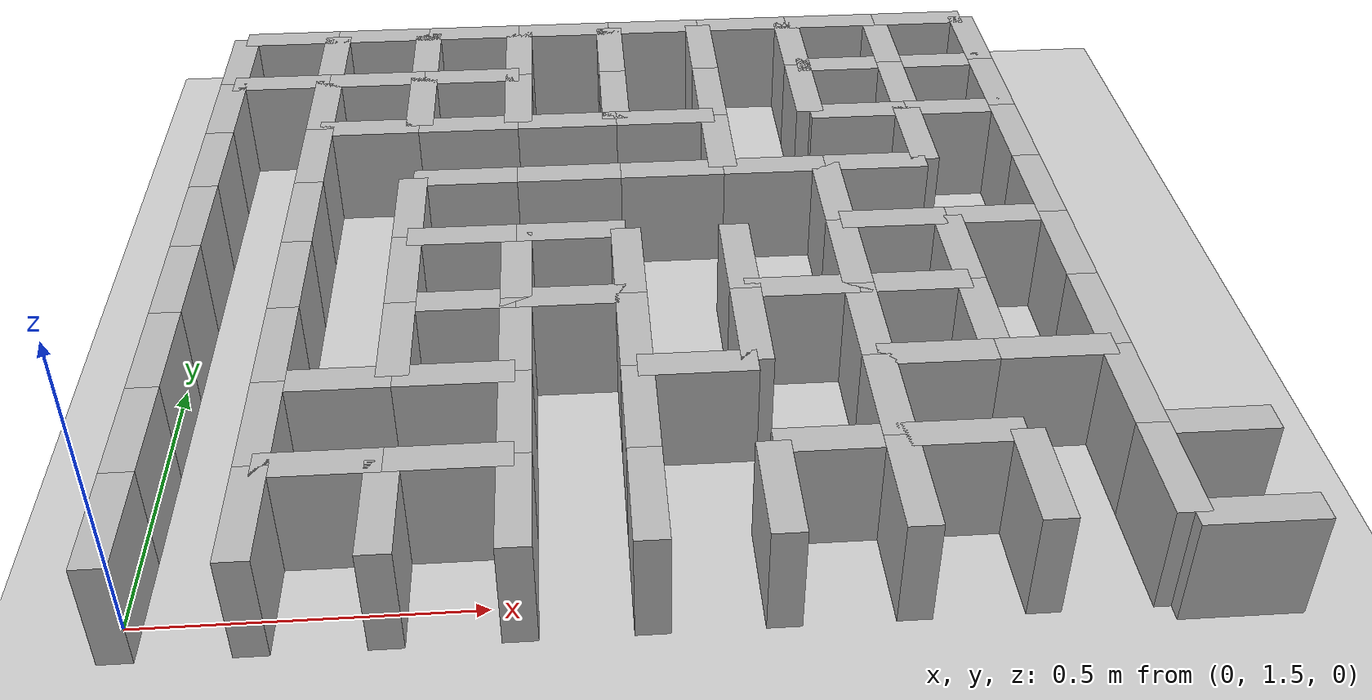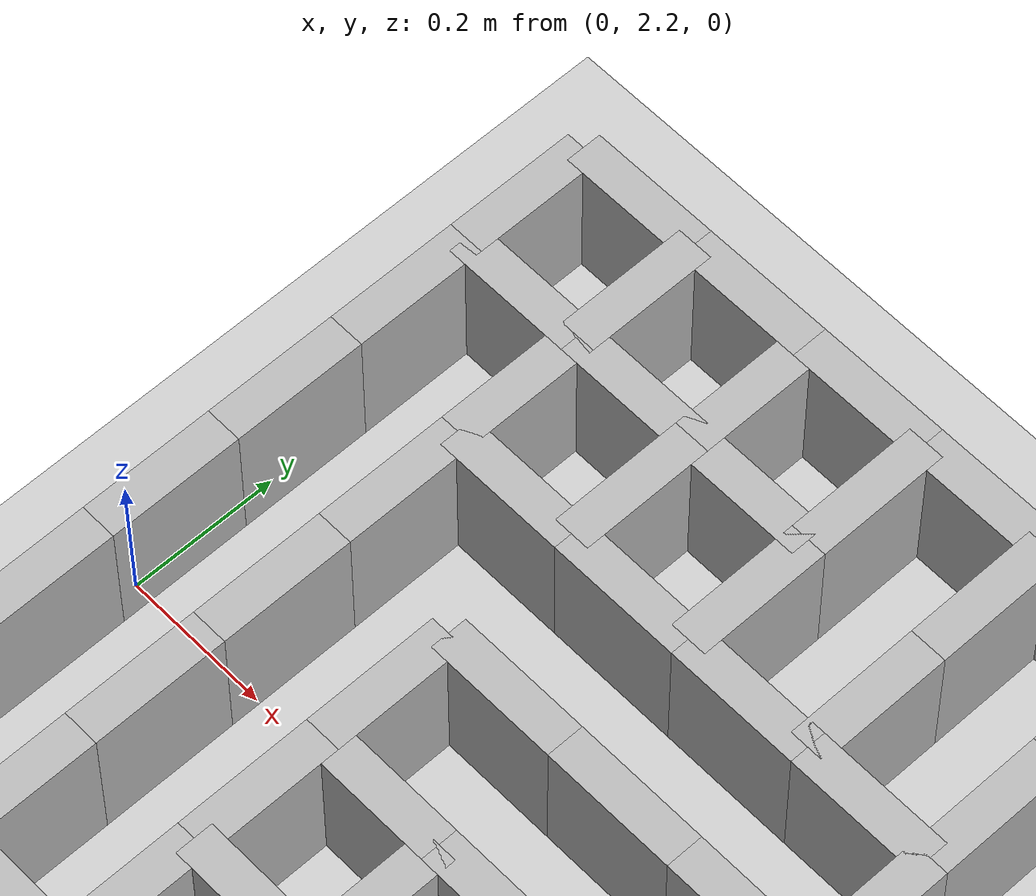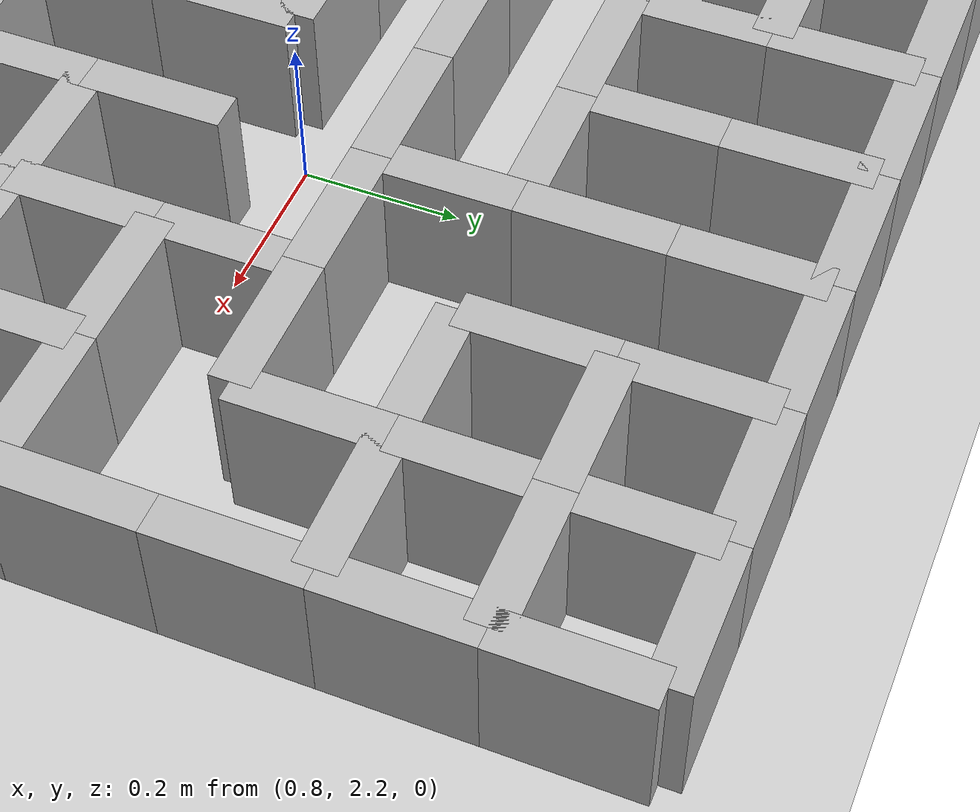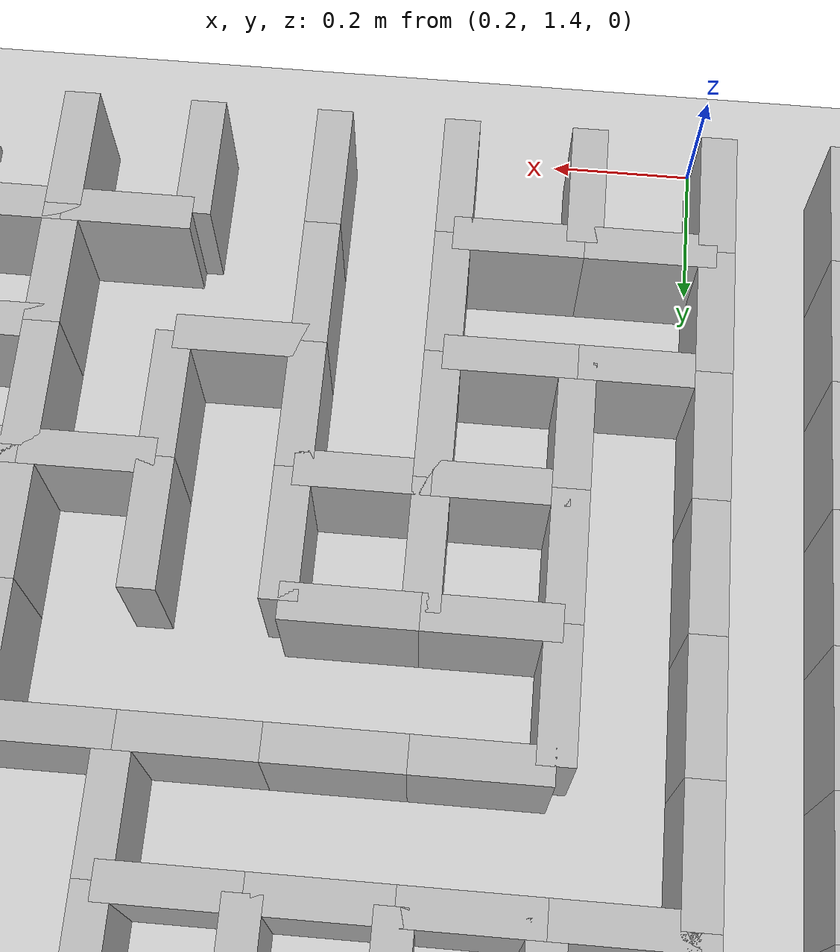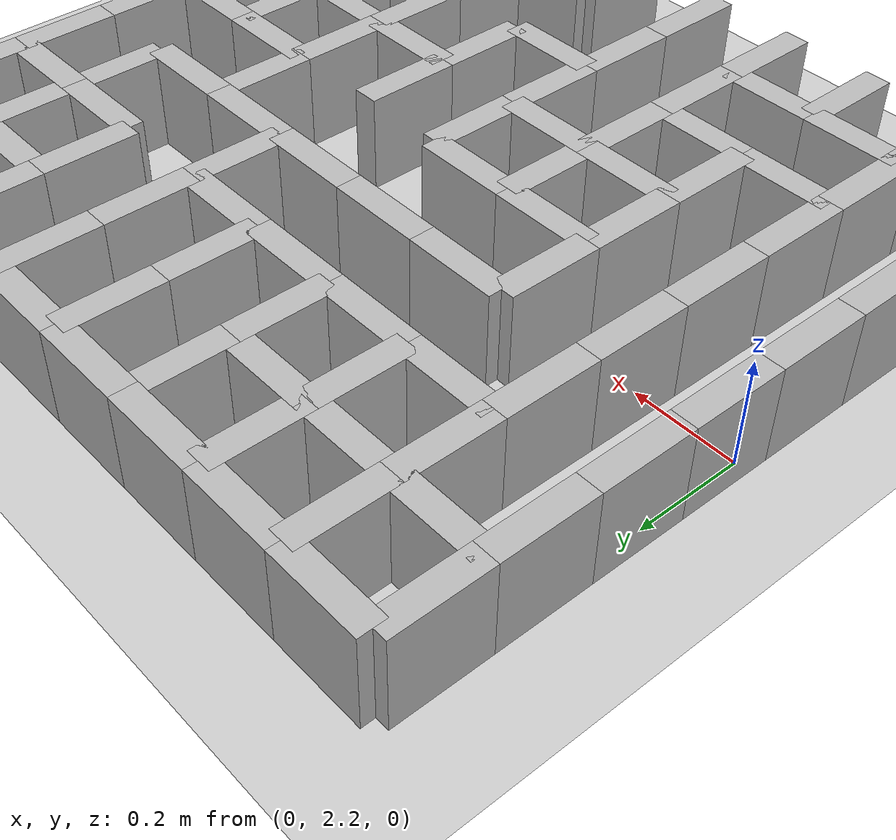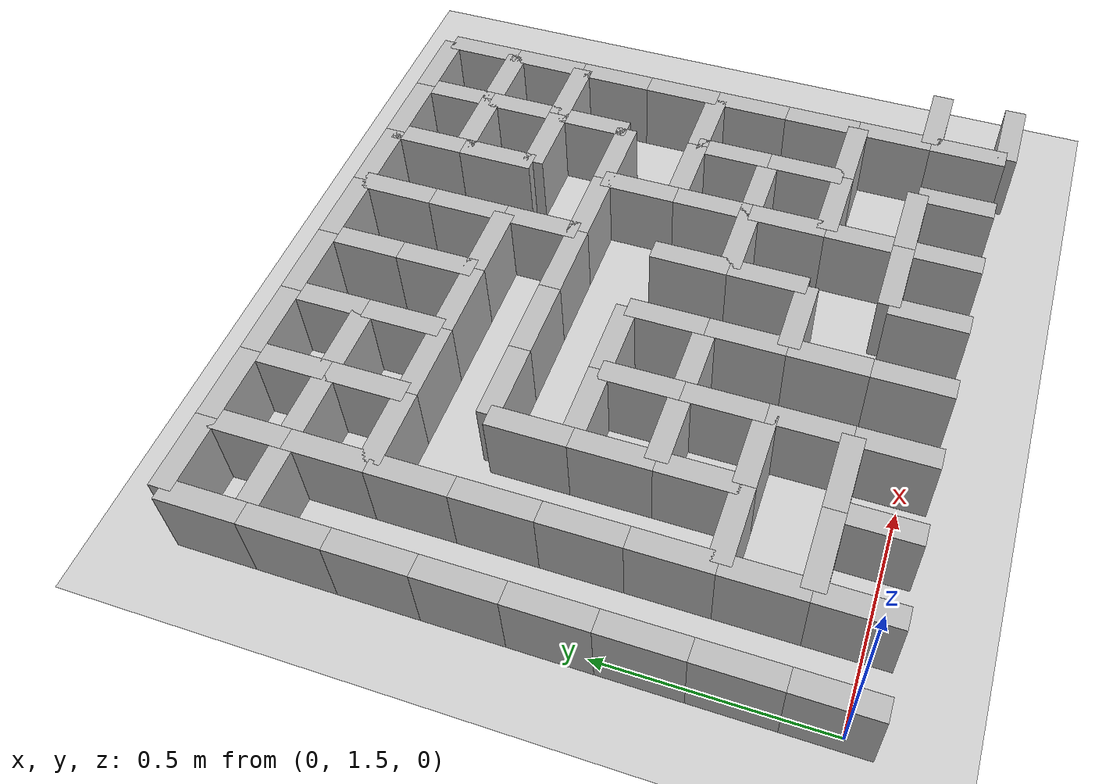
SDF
<sdf version="1.6">
 <world name="default">
  <model name="ground_plane">
   <static>1</static>
   <link name="link">
    <collision name="collision">
     <geometry><plane><normal>0 0 1</normal><size>100 100</size></plane></geometry>
     <surface><friction><ode><mu>100</mu><mu2>50</mu2></ode></friction></surface>
    </collision>
    <visual name="visual">
     <cast_shadows>0</cast_shadows>
     <geometry><plane><normal>0 0 1</normal><size>100 100</size></plane></geometry>
     <material>
      <script><uri>file://media/materials/scripts/gazebo.material</uri><name>Gazebo/Grey</name></script>
     </material>
    </visual>
   </link>
  </model>
  <model name="labyrinth_wall265">
   <pose>0.180000 1.530000 0.09 0 0 1.570796</pose>
   <link name="link">
    <inertial><mass>3.0</mass></inertial>
    <collision name="collision"><geometry><box><size>0.180 0.050 0.180</size></box></geometry></collision>
    <visual name="visual"><geometry><box><size>0.180 0.050 0.180</size></box></geometry></visual>
   </link>
   <static>true</static>
  </model>
  <model name="labyrinth_wall266">
   <pose>0.000000 1.530000 0.09 0 0 1.570796</pose>
   <link name="link">
    <inertial><mass>3.0</mass></inertial>
    <collision name="collision"><geometry><box><size>0.180 0.050 0.180</size></box></geometry></collision>
    <visual name="visual"><geometry><box><size>0.180 0.050 0.180</size></box></geometry></visual>
   </link>
   <static>true</static>
  </model>
  <model name="labyrinth_wall268">
   <pose>0.360000 1.530000 0.09 0 0 1.570796</pose>
   <link name="link">
    <inertial><mass>3.0</mass></inertial>
    <collision name="collision"><geometry><box><size>0.180 0.050 0.180</size></box></geometry></collision>
    <visual name="visual"><geometry><box><size>0.180 0.050 0.180</size></box></geometry></visual>
   </link>
   <static>true</static>
  </model>
  <model name="labyrinth_wall270">
   <pose>0.540000 1.530000 0.09 0 0 1.570796</pose>
   <link name="link">
    <inertial><mass>3.0</mass></inertial>
    <collision name="collision"><geometry><box><size>0.180 0.050 0.180</size></box></geometry></collision>
    <visual name="visual"><geometry><box><size>0.180 0.050 0.180</size></box></geometry></visual>
   </link>
   <static>true</static>
  </model>
  <model name="labyrinth_wall272">
   <pose>0.720000 1.530000 0.09 0 0 1.570796</pose>
   <link name="link">
    <inertial><mass>3.0</mass></inertial>
    <collision name="collision"><geometry><box><size>0.180 0.050 0.180</size></box></geometry></collision>
    <visual name="visual"><geometry><box><size>0.180 0.050 0.180</size></box></geometry></visual>
   </link>
   <static>true</static>
  </model>
  <model name="labyrinth_wall274">
   <pose>0.900000 1.530000 0.09 0 0 1.570796</pose>
   <link name="link">
    <inertial><mass>3.0</mass></inertial>
    <collision name="collision"><geometry><box><size>0.180 0.050 0.180</size></box></geometry></collision>
    <visual name="visual"><geometry><box><size>0.180 0.050 0.180</size></box></geometry></visual>
   </link>
   <static>true</static>
  </model>
  <model name="labyrinth_wall276">
   <pose>1.080000 1.530000 0.09 0 0 1.570796</pose>
   <link name="link">
    <inertial><mass>3.0</mass></inertial>
    <collision name="collision"><geometry><box><size>0.180 0.050 0.180</size></box></geometry></collision>
    <visual name="visual"><geometry><box><size>0.180 0.050 0.180</size></box></geometry></visual>
   </link>
   <static>true</static>
  </model>
  <model name="labyrinth_wall278">
   <pose>1.260000 1.530000 0.09 0 0 1.570796</pose>
   <link name="link">
    <inertial><mass>3.0</mass></inertial>
    <collision name="collision"><geometry><box><size>0.180 0.050 0.180</size></box></geometry></collision>
    <visual name="visual"><geometry><box><size>0.180 0.050 0.180</size></box></geometry></visual>
   </link>
   <static>true</static>
  </model>
  <model name="labyrinth_wall280">
   <pose>1.440000 1.530000 0.09 0 0 1.570796</pose>
   <link name="link">
    <inertial><mass>3.0</mass></inertial>
    <collision name="collision"><geometry><box><size>0.180 0.050 0.180</size></box></geometry></collision>
    <visual name="visual"><geometry><box><size>0.180 0.050 0.180</size></box></geometry></visual>
   </link>
   <static>true</static>
  </model>
  <model name="labyrinth_wall281">
   <pose>1.530000 1.440000 0.09 0 0 0.000000</pose>
   <link name="link">
    <inertial><mass>3.0</mass></inertial>
    <collision name="collision"><geometry><box><size>0.180 0.050 0.180</size></box></geometry></collision>
    <visual name="visual"><geometry><box><size>0.180 0.050 0.180</size></box></geometry></visual>
   </link>
   <static>true</static>
  </model>
  <model name="labyrinth_wall298">
   <pose>0.180000 1.710000 0.09 0 0 1.570796</pose>
   <link name="link">
    <inertial><mass>3.0</mass></inertial>
    <collision name="collision"><geometry><box><size>0.180 0.050 0.180</size></box></geometry></collision>
    <visual name="visual"><geometry><box><size>0.180 0.050 0.180</size></box></geometry></visual>
   </link>
   <static>true</static>
  </model>
  <model name="labyrinth_wall299">
   <pose>0.000000 1.710000 0.09 0 0 1.570796</pose>
   <link name="link">
    <inertial><mass>3.0</mass></inertial>
    <collision name="collision"><geometry><box><size>0.180 0.050 0.180</size></box></geometry></collision>
    <visual name="visual"><geometry><box><size>0.180 0.050 0.180</size></box></geometry></visual>
   </link>
   <static>true</static>
  </model>
  <model name="labyrinth_wall300">
   <pose>0.270000 1.620000 0.09 0 0 0.000000</pose>
   <link name="link">
    <inertial><mass>3.0</mass></inertial>
    <collision name="collision"><geometry><box><size>0.180 0.050 0.180</size></box></geometry></collision>
    <visual name="visual"><geometry><box><size>0.180 0.050 0.180</size></box></geometry></visual>
   </link>
   <static>true</static>
  </model>
  <model name="labyrinth_wall302">
   <pose>0.450000 1.620000 0.09 0 0 0.000000</pose>
   <link name="link">
    <inertial><mass>3.0</mass></inertial>
    <collision name="collision"><geometry><box><size>0.180 0.050 0.180</size></box></geometry></collision>
    <visual name="visual"><geometry><box><size>0.180 0.050 0.180</size></box></geometry></visual>
   </link>
   <static>true</static>
  </model>
  <model name="labyrinth_wall303">
   <pose>0.540000 1.710000 0.09 0 0 1.570796</pose>
   <link name="link">
    <inertial><mass>3.0</mass></inertial>
    <collision name="collision"><geometry><box><size>0.180 0.050 0.180</size></box></geometry></collision>
    <visual name="visual"><geometry><box><size>0.180 0.050 0.180</size></box></geometry></visual>
   </link>
   <static>true</static>
  </model>
  <model name="labyrinth_wall305">
   <pose>0.720000 1.710000 0.09 0 0 1.570796</pose>
   <link name="link">
    <inertial><mass>3.0</mass></inertial>
    <collision name="collision"><geometry><box><size>0.180 0.050 0.180</size></box></geometry></collision>
    <visual name="visual"><geometry><box><size>0.180 0.050 0.180</size></box></geometry></visual>
   </link>
   <static>true</static>
  </model>
  <model name="labyrinth_wall308">
   <pose>0.990000 1.620000 0.09 0 0 0.000000</pose>
   <link name="link">
    <inertial><mass>3.0</mass></inertial>
    <collision name="collision"><geometry><box><size>0.180 0.050 0.180</size></box></geometry></collision>
    <visual name="visual"><geometry><box><size>0.180 0.050 0.180</size></box></geometry></visual>
   </link>
   <static>true</static>
  </model>
  <model name="labyrinth_wall309">
   <pose>1.080000 1.710000 0.09 0 0 1.570796</pose>
   <link name="link">
    <inertial><mass>3.0</mass></inertial>
    <collision name="collision"><geometry><box><size>0.180 0.050 0.180</size></box></geometry></collision>
    <visual name="visual"><geometry><box><size>0.180 0.050 0.180</size></box></geometry></visual>
   </link>
   <static>true</static>
  </model>
  <model name="labyrinth_wall310">
   <pose>1.170000 1.620000 0.09 0 0 0.000000</pose>
   <link name="link">
    <inertial><mass>3.0</mass></inertial>
    <collision name="collision"><geometry><box><size>0.180 0.050 0.180</size></box></geometry></collision>
    <visual name="visual"><geometry><box><size>0.180 0.050 0.180</size></box></geometry></visual>
   </link>
   <static>true</static>
  </model>
  <model name="labyrinth_wall313">
   <pose>1.440000 1.710000 0.09 0 0 1.570796</pose>
   <link name="link">
    <inertial><mass>3.0</mass></inertial>
    <collision name="collision"><geometry><box><size>0.180 0.050 0.180</size></box></geometry></collision>
    <visual name="visual"><geometry><box><size>0.180 0.050 0.180</size></box></geometry></visual>
   </link>
   <static>true</static>
  </model>
  <model name="labyrinth_wall314">
   <pose>1.530000 1.620000 0.09 0 0 0.000000</pose>
   <link name="link">
    <inertial><mass>3.0</mass></inertial>
    <collision name="collision"><geometry><box><size>0.180 0.050 0.180</size></box></geometry></collision>
    <visual name="visual"><geometry><box><size>0.180 0.050 0.180</size></box></geometry></visual>
   </link>
   <static>true</static>
  </model>
  <model name="labyrinth_wall331">
   <pose>0.180000 1.890000 0.09 0 0 1.570796</pose>
   <link name="link">
    <inertial><mass>3.0</mass></inertial>
    <collision name="collision"><geometry><box><size>0.180 0.050 0.180</size></box></geometry></collision>
    <visual name="visual"><geometry><box><size>0.180 0.050 0.180</size></box></geometry></visual>
   </link>
   <static>true</static>
  </model>
  <model name="labyrinth_wall332">
   <pose>0.000000 1.890000 0.09 0 0 1.570796</pose>
   <link name="link">
    <inertial><mass>3.0</mass></inertial>
    <collision name="collision"><geometry><box><size>0.180 0.050 0.180</size></box></geometry></collision>
    <visual name="visual"><geometry><box><size>0.180 0.050 0.180</size></box></geometry></visual>
   </link>
   <static>true</static>
  </model>
  <model name="labyrinth_wall333">
   <pose>0.270000 1.800000 0.09 0 0 0.000000</pose>
   <link name="link">
    <inertial><mass>3.0</mass></inertial>
    <collision name="collision"><geometry><box><size>0.180 0.050 0.180</size></box></geometry></collision>
    <visual name="visual"><geometry><box><size>0.180 0.050 0.180</size></box></geometry></visual>
   </link>
   <static>true</static>
  </model>
  <model name="labyrinth_wall334">
   <pose>0.360000 1.890000 0.09 0 0 1.570796</pose>
   <link name="link">
    <inertial><mass>3.0</mass></inertial>
    <collision name="collision"><geometry><box><size>0.180 0.050 0.180</size></box></geometry></collision>
    <visual name="visual"><geometry><box><size>0.180 0.050 0.180</size></box></geometry></visual>
   </link>
   <static>true</static>
  </model>
  <model name="labyrinth_wall335">
   <pose>0.450000 1.800000 0.09 0 0 0.000000</pose>
   <link name="link">
    <inertial><mass>3.0</mass></inertial>
    <collision name="collision"><geometry><box><size>0.180 0.050 0.180</size></box></geometry></collision>
    <visual name="visual"><geometry><box><size>0.180 0.050 0.180</size></box></geometry></visual>
   </link>
   <static>true</static>
  </model>
  <model name="labyrinth_wall336">
   <pose>0.540000 1.890000 0.09 0 0 1.570796</pose>
   <link name="link">
    <inertial><mass>3.0</mass></inertial>
    <collision name="collision"><geometry><box><size>0.180 0.050 0.180</size></box></geometry></collision>
    <visual name="visual"><geometry><box><size>0.180 0.050 0.180</size></box></geometry></visual>
   </link>
   <static>true</static>
  </model>
  <model name="labyrinth_wall338">
   <pose>0.720000 1.890000 0.09 0 0 1.570796</pose>
   <link name="link">
    <inertial><mass>3.0</mass></inertial>
    <collision name="collision"><geometry><box><size>0.180 0.050 0.180</size></box></geometry></collision>
    <visual name="visual"><geometry><box><size>0.180 0.050 0.180</size></box></geometry></visual>
   </link>
   <static>true</static>
  </model>
  <model name="labyrinth_wall339">
   <pose>0.810000 1.800000 0.09 0 0 0.000000</pose>
   <link name="link">
    <inertial><mass>3.0</mass></inertial>
    <collision name="collision"><geometry><box><size>0.180 0.050 0.180</size></box></geometry></collision>
    <visual name="visual"><geometry><box><size>0.180 0.050 0.180</size></box></geometry></visual>
   </link>
   <static>true</static>
  </model>
  <model name="labyrinth_wall340">
   <pose>0.900000 1.890000 0.09 0 0 1.570796</pose>
   <link name="link">
    <inertial><mass>3.0</mass></inertial>
    <collision name="collision"><geometry><box><size>0.180 0.050 0.180</size></box></geometry></collision>
    <visual name="visual"><geometry><box><size>0.180 0.050 0.180</size></box></geometry></visual>
   </link>
   <static>true</static>
  </model>
  <model name="labyrinth_wall342">
   <pose>1.080000 1.890000 0.09 0 0 1.570796</pose>
   <link name="link">
    <inertial><mass>3.0</mass></inertial>
    <collision name="collision"><geometry><box><size>0.180 0.050 0.180</size></box></geometry></collision>
    <visual name="visual"><geometry><box><size>0.180 0.050 0.180</size></box></geometry></visual>
   </link>
   <static>true</static>
  </model>
  <model name="labyrinth_wall343">
   <pose>1.170000 1.800000 0.09 0 0 0.000000</pose>
   <link name="link">
    <inertial><mass>3.0</mass></inertial>
    <collision name="collision"><geometry><box><size>0.180 0.050 0.180</size></box></geometry></collision>
    <visual name="visual"><geometry><box><size>0.180 0.050 0.180</size></box></geometry></visual>
   </link>
   <static>true</static>
  </model>
  <model name="labyrinth_wall344">
   <pose>1.260000 1.890000 0.09 0 0 1.570796</pose>
   <link name="link">
    <inertial><mass>3.0</mass></inertial>
    <collision name="collision"><geometry><box><size>0.180 0.050 0.180</size></box></geometry></collision>
    <visual name="visual"><geometry><box><size>0.180 0.050 0.180</size></box></geometry></visual>
   </link>
   <static>true</static>
  </model>
  <model name="labyrinth_wall345">
   <pose>1.350000 1.800000 0.09 0 0 0.000000</pose>
   <link name="link">
    <inertial><mass>3.0</mass></inertial>
    <collision name="collision"><geometry><box><size>0.180 0.050 0.180</size></box></geometry></collision>
    <visual name="visual"><geometry><box><size>0.180 0.050 0.180</size></box></geometry></visual>
   </link>
   <static>true</static>
  </model>
  <model name="labyrinth_wall346">
   <pose>1.440000 1.890000 0.09 0 0 1.570796</pose>
   <link name="link">
    <inertial><mass>3.0</mass></inertial>
    <collision name="collision"><geometry><box><size>0.180 0.050 0.180</size></box></geometry></collision>
    <visual name="visual"><geometry><box><size>0.180 0.050 0.180</size></box></geometry></visual>
   </link>
   <static>true</static>
  </model>
  <model name="labyrinth_wall364">
   <pose>0.180000 2.070000 0.09 0 0 1.570796</pose>
   <link name="link">
    <inertial><mass>3.0</mass></inertial>
    <collision name="collision"><geometry><box><size>0.180 0.050 0.180</size></box></geometry></collision>
    <visual name="visual"><geometry><box><size>0.180 0.050 0.180</size></box></geometry></visual>
   </link>
   <static>true</static>
  </model>
  <model name="labyrinth_wall365">
   <pose>0.000000 2.070000 0.09 0 0 1.570796</pose>
   <link name="link">
    <inertial><mass>3.0</mass></inertial>
    <collision name="collision"><geometry><box><size>0.180 0.050 0.180</size></box></geometry></collision>
    <visual name="visual"><geometry><box><size>0.180 0.050 0.180</size></box></geometry></visual>
   </link>
   <static>true</static>
  </model>
  <model name="labyrinth_wall367">
   <pose>0.360000 2.070000 0.09 0 0 1.570796</pose>
   <link name="link">
    <inertial><mass>3.0</mass></inertial>
    <collision name="collision"><geometry><box><size>0.180 0.050 0.180</size></box></geometry></collision>
    <visual name="visual"><geometry><box><size>0.180 0.050 0.180</size></box></geometry></visual>
   </link>
   <static>true</static>
  </model>
  <model name="labyrinth_wall368">
   <pose>0.450000 1.980000 0.09 0 0 0.000000</pose>
   <link name="link">
    <inertial><mass>3.0</mass></inertial>
    <collision name="collision"><geometry><box><size>0.180 0.050 0.180</size></box></geometry></collision>
    <visual name="visual"><geometry><box><size>0.180 0.050 0.180</size></box></geometry></visual>
   </link>
   <static>true</static>
  </model>
  <model name="labyrinth_wall369">
   <pose>0.540000 2.070000 0.09 0 0 1.570796</pose>
   <link name="link">
    <inertial><mass>3.0</mass></inertial>
    <collision name="collision"><geometry><box><size>0.180 0.050 0.180</size></box></geometry></collision>
    <visual name="visual"><geometry><box><size>0.180 0.050 0.180</size></box></geometry></visual>
   </link>
   <static>true</static>
  </model>
  <model name="labyrinth_wall370">
   <pose>0.630000 1.980000 0.09 0 0 0.000000</pose>
   <link name="link">
    <inertial><mass>3.0</mass></inertial>
    <collision name="collision"><geometry><box><size>0.180 0.050 0.180</size></box></geometry></collision>
    <visual name="visual"><geometry><box><size>0.180 0.050 0.180</size></box></geometry></visual>
   </link>
   <static>true</static>
  </model>
  <model name="labyrinth_wall371">
   <pose>0.720000 2.070000 0.09 0 0 1.570796</pose>
   <link name="link">
    <inertial><mass>3.0</mass></inertial>
    <collision name="collision"><geometry><box><size>0.180 0.050 0.180</size></box></geometry></collision>
    <visual name="visual"><geometry><box><size>0.180 0.050 0.180</size></box></geometry></visual>
   </link>
   <static>true</static>
  </model>
  <model name="labyrinth_wall373">
   <pose>0.900000 2.070000 0.09 0 0 1.570796</pose>
   <link name="link">
    <inertial><mass>3.0</mass></inertial>
    <collision name="collision"><geometry><box><size>0.180 0.050 0.180</size></box></geometry></collision>
    <visual name="visual"><geometry><box><size>0.180 0.050 0.180</size></box></geometry></visual>
   </link>
   <static>true</static>
  </model>
  <model name="labyrinth_wall374">
   <pose>0.990000 1.980000 0.09 0 0 0.000000</pose>
   <link name="link">
    <inertial><mass>3.0</mass></inertial>
    <collision name="collision"><geometry><box><size>0.180 0.050 0.180</size></box></geometry></collision>
    <visual name="visual"><geometry><box><size>0.180 0.050 0.180</size></box></geometry></visual>
   </link>
   <static>true</static>
  </model>
  <model name="labyrinth_wall375">
   <pose>1.080000 2.070000 0.09 0 0 1.570796</pose>
   <link name="link">
    <inertial><mass>3.0</mass></inertial>
    <collision name="collision"><geometry><box><size>0.180 0.050 0.180</size></box></geometry></collision>
    <visual name="visual"><geometry><box><size>0.180 0.050 0.180</size></box></geometry></visual>
   </link>
   <static>true</static>
  </model>
  <model name="labyrinth_wall376">
   <pose>1.170000 1.980000 0.09 0 0 0.000000</pose>
   <link name="link">
    <inertial><mass>3.0</mass></inertial>
    <collision name="collision"><geometry><box><size>0.180 0.050 0.180</size></box></geometry></collision>
    <visual name="visual"><geometry><box><size>0.180 0.050 0.180</size></box></geometry></visual>
   </link>
   <static>true</static>
  </model>
  <model name="labyrinth_wall377">
   <pose>1.260000 2.070000 0.09 0 0 1.570796</pose>
   <link name="link">
    <inertial><mass>3.0</mass></inertial>
    <collision name="collision"><geometry><box><size>0.180 0.050 0.180</size></box></geometry></collision>
    <visual name="visual"><geometry><box><size>0.180 0.050 0.180</size></box></geometry></visual>
   </link>
   <static>true</static>
  </model>
  <model name="labyrinth_wall379">
   <pose>1.440000 2.070000 0.09 0 0 1.570796</pose>
   <link name="link">
    <inertial><mass>3.0</mass></inertial>
    <collision name="collision"><geometry><box><size>0.180 0.050 0.180</size></box></geometry></collision>
    <visual name="visual"><geometry><box><size>0.180 0.050 0.180</size></box></geometry></visual>
   </link>
   <static>true</static>
  </model>
  <model name="labyrinth_wall397">
   <pose>0.180000 2.250000 0.09 0 0 1.570796</pose>
   <link name="link">
    <inertial><mass>3.0</mass></inertial>
    <collision name="collision"><geometry><box><size>0.180 0.050 0.180</size></box></geometry></collision>
    <visual name="visual"><geometry><box><size>0.180 0.050 0.180</size></box></geometry></visual>
   </link>
   <static>true</static>
  </model>
  <model name="labyrinth_wall398">
   <pose>0.000000 2.250000 0.09 0 0 1.570796</pose>
   <link name="link">
    <inertial><mass>3.0</mass></inertial>
    <collision name="collision"><geometry><box><size>0.180 0.050 0.180</size></box></geometry></collision>
    <visual name="visual"><geometry><box><size>0.180 0.050 0.180</size></box></geometry></visual>
   </link>
   <static>true</static>
  </model>
  <model name="labyrinth_wall400">
   <pose>0.360000 2.250000 0.09 0 0 1.570796</pose>
   <link name="link">
    <inertial><mass>3.0</mass></inertial>
    <collision name="collision"><geometry><box><size>0.180 0.050 0.180</size></box></geometry></collision>
    <visual name="visual"><geometry><box><size>0.180 0.050 0.180</size></box></geometry></visual>
   </link>
   <static>true</static>
  </model>
  <model name="labyrinth_wall401">
   <pose>0.450000 2.160000 0.09 0 0 0.000000</pose>
   <link name="link">
    <inertial><mass>3.0</mass></inertial>
    <collision name="collision"><geometry><box><size>0.180 0.050 0.180</size></box></geometry></collision>
    <visual name="visual"><geometry><box><size>0.180 0.050 0.180</size></box></geometry></visual>
   </link>
   <static>true</static>
  </model>
  <model name="labyrinth_wall403">
   <pose>0.630000 2.160000 0.09 0 0 0.000000</pose>
   <link name="link">
    <inertial><mass>3.0</mass></inertial>
    <collision name="collision"><geometry><box><size>0.180 0.050 0.180</size></box></geometry></collision>
    <visual name="visual"><geometry><box><size>0.180 0.050 0.180</size></box></geometry></visual>
   </link>
   <static>true</static>
  </model>
  <model name="labyrinth_wall408">
   <pose>1.080000 2.250000 0.09 0 0 1.570796</pose>
   <link name="link">
    <inertial><mass>3.0</mass></inertial>
    <collision name="collision"><geometry><box><size>0.180 0.050 0.180</size></box></geometry></collision>
    <visual name="visual"><geometry><box><size>0.180 0.050 0.180</size></box></geometry></visual>
   </link>
   <static>true</static>
  </model>
  <model name="labyrinth_wall409">
   <pose>1.170000 2.160000 0.09 0 0 0.000000</pose>
   <link name="link">
    <inertial><mass>3.0</mass></inertial>
    <collision name="collision"><geometry><box><size>0.180 0.050 0.180</size></box></geometry></collision>
    <visual name="visual"><geometry><box><size>0.180 0.050 0.180</size></box></geometry></visual>
   </link>
   <static>true</static>
  </model>
  <model name="labyrinth_wall411">
   <pose>1.350000 2.160000 0.09 0 0 0.000000</pose>
   <link name="link">
    <inertial><mass>3.0</mass></inertial>
    <collision name="collision"><geometry><box><size>0.180 0.050 0.180</size></box></geometry></collision>
    <visual name="visual"><geometry><box><size>0.180 0.050 0.180</size></box></geometry></visual>
   </link>
   <static>true</static>
  </model>
  <model name="labyrinth_wall412">
   <pose>1.440000 2.250000 0.09 0 0 1.570796</pose>
   <link name="link">
    <inertial><mass>3.0</mass></inertial>
    <collision name="collision"><geometry><box><size>0.180 0.050 0.180</size></box></geometry></collision>
    <visual name="visual"><geometry><box><size>0.180 0.050 0.180</size></box></geometry></visual>
   </link>
   <static>true</static>
  </model>
  <model name="labyrinth_wall430">
   <pose>0.180000 2.430000 0.09 0 0 1.570796</pose>
   <link name="link">
    <inertial><mass>3.0</mass></inertial>
    <collision name="collision"><geometry><box><size>0.180 0.050 0.180</size></box></geometry></collision>
    <visual name="visual"><geometry><box><size>0.180 0.050 0.180</size></box></geometry></visual>
   </link>
   <static>true</static>
  </model>
  <model name="labyrinth_wall431">
   <pose>0.000000 2.430000 0.09 0 0 1.570796</pose>
   <link name="link">
    <inertial><mass>3.0</mass></inertial>
    <collision name="collision"><geometry><box><size>0.180 0.050 0.180</size></box></geometry></collision>
    <visual name="visual"><geometry><box><size>0.180 0.050 0.180</size></box></geometry></visual>
   </link>
   <static>true</static>
  </model>
  <model name="labyrinth_wall434">
   <pose>0.450000 2.340000 0.09 0 0 0.000000</pose>
   <link name="link">
    <inertial><mass>3.0</mass></inertial>
    <collision name="collision"><geometry><box><size>0.180 0.050 0.180</size></box></geometry></collision>
    <visual name="visual"><geometry><box><size>0.180 0.050 0.180</size></box></geometry></visual>
   </link>
   <static>true</static>
  </model>
  <model name="labyrinth_wall436">
   <pose>0.630000 2.340000 0.09 0 0 0.000000</pose>
   <link name="link">
    <inertial><mass>3.0</mass></inertial>
    <collision name="collision"><geometry><box><size>0.180 0.050 0.180</size></box></geometry></collision>
    <visual name="visual"><geometry><box><size>0.180 0.050 0.180</size></box></geometry></visual>
   </link>
   <static>true</static>
  </model>
  <model name="labyrinth_wall438">
   <pose>0.810000 2.340000 0.09 0 0 0.000000</pose>
   <link name="link">
    <inertial><mass>3.0</mass></inertial>
    <collision name="collision"><geometry><box><size>0.180 0.050 0.180</size></box></geometry></collision>
    <visual name="visual"><geometry><box><size>0.180 0.050 0.180</size></box></geometry></visual>
   </link>
   <static>true</static>
  </model>
  <model name="labyrinth_wall439">
   <pose>0.900000 2.430000 0.09 0 0 1.570796</pose>
   <link name="link">
    <inertial><mass>3.0</mass></inertial>
    <collision name="collision"><geometry><box><size>0.180 0.050 0.180</size></box></geometry></collision>
    <visual name="visual"><geometry><box><size>0.180 0.050 0.180</size></box></geometry></visual>
   </link>
   <static>true</static>
  </model>
  <model name="labyrinth_wall440">
   <pose>0.990000 2.340000 0.09 0 0 0.000000</pose>
   <link name="link">
    <inertial><mass>3.0</mass></inertial>
    <collision name="collision"><geometry><box><size>0.180 0.050 0.180</size></box></geometry></collision>
    <visual name="visual"><geometry><box><size>0.180 0.050 0.180</size></box></geometry></visual>
   </link>
   <static>true</static>
  </model>
  <model name="labyrinth_wall442">
   <pose>1.170000 2.340000 0.09 0 0 0.000000</pose>
   <link name="link">
    <inertial><mass>3.0</mass></inertial>
    <collision name="collision"><geometry><box><size>0.180 0.050 0.180</size></box></geometry></collision>
    <visual name="visual"><geometry><box><size>0.180 0.050 0.180</size></box></geometry></visual>
   </link>
   <static>true</static>
  </model>
  <model name="labyrinth_wall443">
   <pose>1.260000 2.430000 0.09 0 0 1.570796</pose>
   <link name="link">
    <inertial><mass>3.0</mass></inertial>
    <collision name="collision"><geometry><box><size>0.180 0.050 0.180</size></box></geometry></collision>
    <visual name="visual"><geometry><box><size>0.180 0.050 0.180</size></box></geometry></visual>
   </link>
   <static>true</static>
  </model>
  <model name="labyrinth_wall445">
   <pose>1.440000 2.430000 0.09 0 0 1.570796</pose>
   <link name="link">
    <inertial><mass>3.0</mass></inertial>
    <collision name="collision"><geometry><box><size>0.180 0.050 0.180</size></box></geometry></collision>
    <visual name="visual"><geometry><box><size>0.180 0.050 0.180</size></box></geometry></visual>
   </link>
   <static>true</static>
  </model>
  <model name="labyrinth_wall463">
   <pose>0.180000 2.610000 0.09 0 0 1.570796</pose>
   <link name="link">
    <inertial><mass>3.0</mass></inertial>
    <collision name="collision"><geometry><box><size>0.180 0.050 0.180</size></box></geometry></collision>
    <visual name="visual"><geometry><box><size>0.180 0.050 0.180</size></box></geometry></visual>
   </link>
   <static>true</static>
  </model>
  <model name="labyrinth_wall464">
   <pose>0.000000 2.610000 0.09 0 0 1.570796</pose>
   <link name="link">
    <inertial><mass>3.0</mass></inertial>
    <collision name="collision"><geometry><box><size>0.180 0.050 0.180</size></box></geometry></collision>
    <visual name="visual"><geometry><box><size>0.180 0.050 0.180</size></box></geometry></visual>
   </link>
   <static>true</static>
  </model>
  <model name="labyrinth_wall465">
   <pose>0.270000 2.520000 0.09 0 0 0.000000</pose>
   <link name="link">
    <inertial><mass>3.0</mass></inertial>
    <collision name="collision"><geometry><box><size>0.180 0.050 0.180</size></box></geometry></collision>
    <visual name="visual"><geometry><box><size>0.180 0.050 0.180</size></box></geometry></visual>
   </link>
   <static>true</static>
  </model>
  <model name="labyrinth_wall466">
   <pose>0.360000 2.610000 0.09 0 0 1.570796</pose>
   <link name="link">
    <inertial><mass>3.0</mass></inertial>
    <collision name="collision"><geometry><box><size>0.180 0.050 0.180</size></box></geometry></collision>
    <visual name="visual"><geometry><box><size>0.180 0.050 0.180</size></box></geometry></visual>
   </link>
   <static>true</static>
  </model>
  <model name="labyrinth_wall467">
   <pose>0.450000 2.520000 0.09 0 0 0.000000</pose>
   <link name="link">
    <inertial><mass>3.0</mass></inertial>
    <collision name="collision"><geometry><box><size>0.180 0.050 0.180</size></box></geometry></collision>
    <visual name="visual"><geometry><box><size>0.180 0.050 0.180</size></box></geometry></visual>
   </link>
   <static>true</static>
  </model>
  <model name="labyrinth_wall468">
   <pose>0.540000 2.610000 0.09 0 0 1.570796</pose>
   <link name="link">
    <inertial><mass>3.0</mass></inertial>
    <collision name="collision"><geometry><box><size>0.180 0.050 0.180</size></box></geometry></collision>
    <visual name="visual"><geometry><box><size>0.180 0.050 0.180</size></box></geometry></visual>
   </link>
   <static>true</static>
  </model>
  <model name="labyrinth_wall469">
   <pose>0.630000 2.520000 0.09 0 0 0.000000</pose>
   <link name="link">
    <inertial><mass>3.0</mass></inertial>
    <collision name="collision"><geometry><box><size>0.180 0.050 0.180</size></box></geometry></collision>
    <visual name="visual"><geometry><box><size>0.180 0.050 0.180</size></box></geometry></visual>
   </link>
   <static>true</static>
  </model>
  <model name="labyrinth_wall470">
   <pose>0.720000 2.610000 0.09 0 0 1.570796</pose>
   <link name="link">
    <inertial><mass>3.0</mass></inertial>
    <collision name="collision"><geometry><box><size>0.180 0.050 0.180</size></box></geometry></collision>
    <visual name="visual"><geometry><box><size>0.180 0.050 0.180</size></box></geometry></visual>
   </link>
   <static>true</static>
  </model>
  <model name="labyrinth_wall471">
   <pose>0.810000 2.520000 0.09 0 0 0.000000</pose>
   <link name="link">
    <inertial><mass>3.0</mass></inertial>
    <collision name="collision"><geometry><box><size>0.180 0.050 0.180</size></box></geometry></collision>
    <visual name="visual"><geometry><box><size>0.180 0.050 0.180</size></box></geometry></visual>
   </link>
   <static>true</static>
  </model>
  <model name="labyrinth_wall472">
   <pose>0.900000 2.610000 0.09 0 0 1.570796</pose>
   <link name="link">
    <inertial><mass>3.0</mass></inertial>
    <collision name="collision"><geometry><box><size>0.180 0.050 0.180</size></box></geometry></collision>
    <visual name="visual"><geometry><box><size>0.180 0.050 0.180</size></box></geometry></visual>
   </link>
   <static>true</static>
  </model>
  <model name="labyrinth_wall474">
   <pose>1.080000 2.610000 0.09 0 0 1.570796</pose>
   <link name="link">
    <inertial><mass>3.0</mass></inertial>
    <collision name="collision"><geometry><box><size>0.180 0.050 0.180</size></box></geometry></collision>
    <visual name="visual"><geometry><box><size>0.180 0.050 0.180</size></box></geometry></visual>
   </link>
   <static>true</static>
  </model>
  <model name="labyrinth_wall475">
   <pose>1.170000 2.520000 0.09 0 0 0.000000</pose>
   <link name="link">
    <inertial><mass>3.0</mass></inertial>
    <collision name="collision"><geometry><box><size>0.180 0.050 0.180</size></box></geometry></collision>
    <visual name="visual"><geometry><box><size>0.180 0.050 0.180</size></box></geometry></visual>
   </link>
   <static>true</static>
  </model>
  <model name="labyrinth_wall476">
   <pose>1.260000 2.610000 0.09 0 0 1.570796</pose>
   <link name="link">
    <inertial><mass>3.0</mass></inertial>
    <collision name="collision"><geometry><box><size>0.180 0.050 0.180</size></box></geometry></collision>
    <visual name="visual"><geometry><box><size>0.180 0.050 0.180</size></box></geometry></visual>
   </link>
   <static>true</static>
  </model>
  <model name="labyrinth_wall477">
   <pose>1.350000 2.520000 0.09 0 0 0.000000</pose>
   <link name="link">
    <inertial><mass>3.0</mass></inertial>
    <collision name="collision"><geometry><box><size>0.180 0.050 0.180</size></box></geometry></collision>
    <visual name="visual"><geometry><box><size>0.180 0.050 0.180</size></box></geometry></visual>
   </link>
   <static>true</static>
  </model>
  <model name="labyrinth_wall478">
   <pose>1.440000 2.610000 0.09 0 0 1.570796</pose>
   <link name="link">
    <inertial><mass>3.0</mass></inertial>
    <collision name="collision"><geometry><box><size>0.180 0.050 0.180</size></box></geometry></collision>
    <visual name="visual"><geometry><box><size>0.180 0.050 0.180</size></box></geometry></visual>
   </link>
   <static>true</static>
  </model>
  <model name="labyrinth_wall495">
   <pose>0.090000 2.700000 0.09 0 0 0.000000</pose>
   <link name="link">
    <inertial><mass>3.0</mass></inertial>
    <collision name="collision"><geometry><box><size>0.180 0.050 0.180</size></box></geometry></collision>
    <visual name="visual"><geometry><box><size>0.180 0.050 0.180</size></box></geometry></visual>
   </link>
   <static>true</static>
  </model>
  <model name="labyrinth_wall496">
   <pose>0.180000 2.790000 0.09 0 0 1.570796</pose>
   <link name="link">
    <inertial><mass>3.0</mass></inertial>
    <collision name="collision"><geometry><box><size>0.180 0.050 0.180</size></box></geometry></collision>
    <visual name="visual"><geometry><box><size>0.180 0.050 0.180</size></box></geometry></visual>
   </link>
   <static>true</static>
  </model>
  <model name="labyrinth_wall497">
   <pose>0.090000 2.880000 0.09 0 0 0.000000</pose>
   <link name="link">
    <inertial><mass>3.0</mass></inertial>
    <collision name="collision"><geometry><box><size>0.180 0.050 0.180</size></box></geometry></collision>
    <visual name="visual"><geometry><box><size>0.180 0.050 0.180</size></box></geometry></visual>
   </link>
   <static>true</static>
  </model>
  <model name="labyrinth_wall498">
   <pose>0.000000 2.790000 0.09 0 0 1.570796</pose>
   <link name="link">
    <inertial><mass>3.0</mass></inertial>
    <collision name="collision"><geometry><box><size>0.180 0.050 0.180</size></box></geometry></collision>
    <visual name="visual"><geometry><box><size>0.180 0.050 0.180</size></box></geometry></visual>
   </link>
   <static>true</static>
  </model>
  <model name="labyrinth_wall499">
   <pose>0.270000 2.700000 0.09 0 0 0.000000</pose>
   <link name="link">
    <inertial><mass>3.0</mass></inertial>
    <collision name="collision"><geometry><box><size>0.180 0.050 0.180</size></box></geometry></collision>
    <visual name="visual"><geometry><box><size>0.180 0.050 0.180</size></box></geometry></visual>
   </link>
   <static>true</static>
  </model>
  <model name="labyrinth_wall500">
   <pose>0.360000 2.790000 0.09 0 0 1.570796</pose>
   <link name="link">
    <inertial><mass>3.0</mass></inertial>
    <collision name="collision"><geometry><box><size>0.180 0.050 0.180</size></box></geometry></collision>
    <visual name="visual"><geometry><box><size>0.180 0.050 0.180</size></box></geometry></visual>
   </link>
   <static>true</static>
  </model>
  <model name="labyrinth_wall501">
   <pose>0.270000 2.880000 0.09 0 0 0.000000</pose>
   <link name="link">
    <inertial><mass>3.0</mass></inertial>
    <collision name="collision"><geometry><box><size>0.180 0.050 0.180</size></box></geometry></collision>
    <visual name="visual"><geometry><box><size>0.180 0.050 0.180</size></box></geometry></visual>
   </link>
   <static>true</static>
  </model>
  <model name="labyrinth_wall502">
   <pose>0.450000 2.700000 0.09 0 0 0.000000</pose>
   <link name="link">
    <inertial><mass>3.0</mass></inertial>
    <collision name="collision"><geometry><box><size>0.180 0.050 0.180</size></box></geometry></collision>
    <visual name="visual"><geometry><box><size>0.180 0.050 0.180</size></box></geometry></visual>
   </link>
   <static>true</static>
  </model>
  <model name="labyrinth_wall503">
   <pose>0.540000 2.790000 0.09 0 0 1.570796</pose>
   <link name="link">
    <inertial><mass>3.0</mass></inertial>
    <collision name="collision"><geometry><box><size>0.180 0.050 0.180</size></box></geometry></collision>
    <visual name="visual"><geometry><box><size>0.180 0.050 0.180</size></box></geometry></visual>
   </link>
   <static>true</static>
  </model>
  <model name="labyrinth_wall504">
   <pose>0.450000 2.880000 0.09 0 0 0.000000</pose>
   <link name="link">
    <inertial><mass>3.0</mass></inertial>
    <collision name="collision"><geometry><box><size>0.180 0.050 0.180</size></box></geometry></collision>
    <visual name="visual"><geometry><box><size>0.180 0.050 0.180</size></box></geometry></visual>
   </link>
   <static>true</static>
  </model>
  <model name="labyrinth_wall506">
   <pose>0.720000 2.790000 0.09 0 0 1.570796</pose>
   <link name="link">
    <inertial><mass>3.0</mass></inertial>
    <collision name="collision"><geometry><box><size>0.180 0.050 0.180</size></box></geometry></collision>
    <visual name="visual"><geometry><box><size>0.180 0.050 0.180</size></box></geometry></visual>
   </link>
   <static>true</static>
  </model>
  <model name="labyrinth_wall507">
   <pose>0.630000 2.880000 0.09 0 0 0.000000</pose>
   <link name="link">
    <inertial><mass>3.0</mass></inertial>
    <collision name="collision"><geometry><box><size>0.180 0.050 0.180</size></box></geometry></collision>
    <visual name="visual"><geometry><box><size>0.180 0.050 0.180</size></box></geometry></visual>
   </link>
   <static>true</static>
  </model>
  <model name="labyrinth_wall509">
   <pose>0.900000 2.790000 0.09 0 0 1.570796</pose>
   <link name="link">
    <inertial><mass>3.0</mass></inertial>
    <collision name="collision"><geometry><box><size>0.180 0.050 0.180</size></box></geometry></collision>
    <visual name="visual"><geometry><box><size>0.180 0.050 0.180</size></box></geometry></visual>
   </link>
   <static>true</static>
  </model>
  <model name="labyrinth_wall510">
   <pose>0.810000 2.880000 0.09 0 0 0.000000</pose>
   <link name="link">
    <inertial><mass>3.0</mass></inertial>
    <collision name="collision"><geometry><box><size>0.180 0.050 0.180</size></box></geometry></collision>
    <visual name="visual"><geometry><box><size>0.180 0.050 0.180</size></box></geometry></visual>
   </link>
   <static>true</static>
  </model>
  <model name="labyrinth_wall512">
   <pose>1.080000 2.790000 0.09 0 0 1.570796</pose>
   <link name="link">
    <inertial><mass>3.0</mass></inertial>
    <collision name="collision"><geometry><box><size>0.180 0.050 0.180</size></box></geometry></collision>
    <visual name="visual"><geometry><box><size>0.180 0.050 0.180</size></box></geometry></visual>
   </link>
   <static>true</static>
  </model>
  <model name="labyrinth_wall513">
   <pose>0.990000 2.880000 0.09 0 0 0.000000</pose>
   <link name="link">
    <inertial><mass>3.0</mass></inertial>
    <collision name="collision"><geometry><box><size>0.180 0.050 0.180</size></box></geometry></collision>
    <visual name="visual"><geometry><box><size>0.180 0.050 0.180</size></box></geometry></visual>
   </link>
   <static>true</static>
  </model>
  <model name="labyrinth_wall514">
   <pose>1.170000 2.700000 0.09 0 0 0.000000</pose>
   <link name="link">
    <inertial><mass>3.0</mass></inertial>
    <collision name="collision"><geometry><box><size>0.180 0.050 0.180</size></box></geometry></collision>
    <visual name="visual"><geometry><box><size>0.180 0.050 0.180</size></box></geometry></visual>
   </link>
   <static>true</static>
  </model>
  <model name="labyrinth_wall515">
   <pose>1.260000 2.790000 0.09 0 0 1.570796</pose>
   <link name="link">
    <inertial><mass>3.0</mass></inertial>
    <collision name="collision"><geometry><box><size>0.180 0.050 0.180</size></box></geometry></collision>
    <visual name="visual"><geometry><box><size>0.180 0.050 0.180</size></box></geometry></visual>
   </link>
   <static>true</static>
  </model>
  <model name="labyrinth_wall516">
   <pose>1.170000 2.880000 0.09 0 0 0.000000</pose>
   <link name="link">
    <inertial><mass>3.0</mass></inertial>
    <collision name="collision"><geometry><box><size>0.180 0.050 0.180</size></box></geometry></collision>
    <visual name="visual"><geometry><box><size>0.180 0.050 0.180</size></box></geometry></visual>
   </link>
   <static>true</static>
  </model>
  <model name="labyrinth_wall517">
   <pose>1.350000 2.700000 0.09 0 0 0.000000</pose>
   <link name="link">
    <inertial><mass>3.0</mass></inertial>
    <collision name="collision"><geometry><box><size>0.180 0.050 0.180</size></box></geometry></collision>
    <visual name="visual"><geometry><box><size>0.180 0.050 0.180</size></box></geometry></visual>
   </link>
   <static>true</static>
  </model>
  <model name="labyrinth_wall518">
   <pose>1.440000 2.790000 0.09 0 0 1.570796</pose>
   <link name="link">
    <inertial><mass>3.0</mass></inertial>
    <collision name="collision"><geometry><box><size>0.180 0.050 0.180</size></box></geometry></collision>
    <visual name="visual"><geometry><box><size>0.180 0.050 0.180</size></box></geometry></visual>
   </link>
   <static>true</static>
  </model>
  <model name="labyrinth_wall519">
   <pose>1.350000 2.880000 0.09 0 0 0.000000</pose>
   <link name="link">
    <inertial><mass>3.0</mass></inertial>
    <collision name="collision"><geometry><box><size>0.180 0.050 0.180</size></box></geometry></collision>
    <visual name="visual"><geometry><box><size>0.180 0.050 0.180</size></box></geometry></visual>
   </link>
   <static>true</static>
  </model>
 </world>
</sdf>
